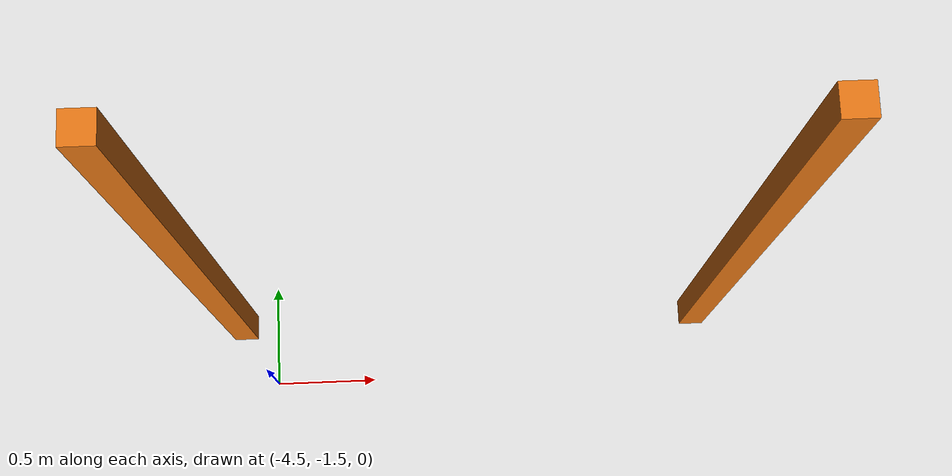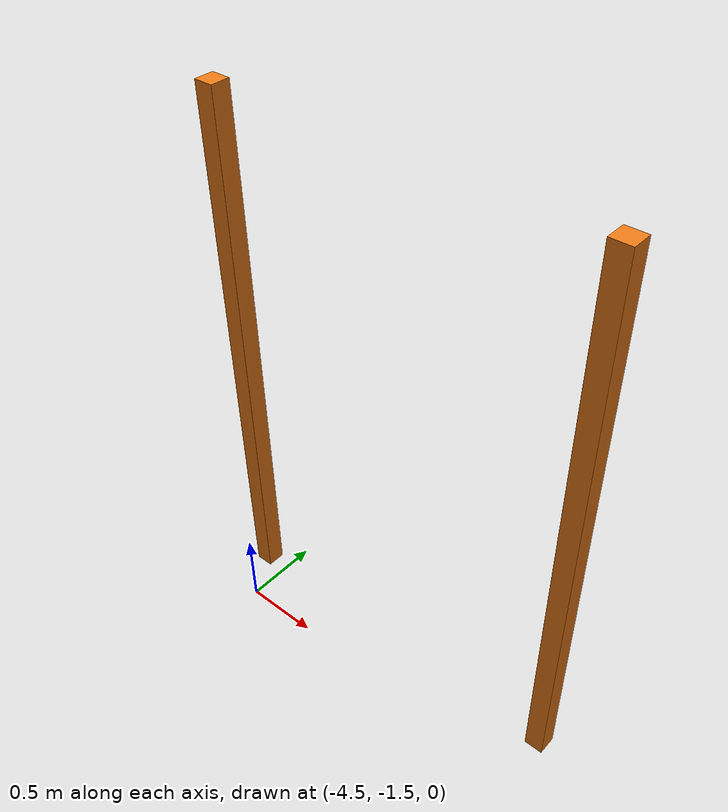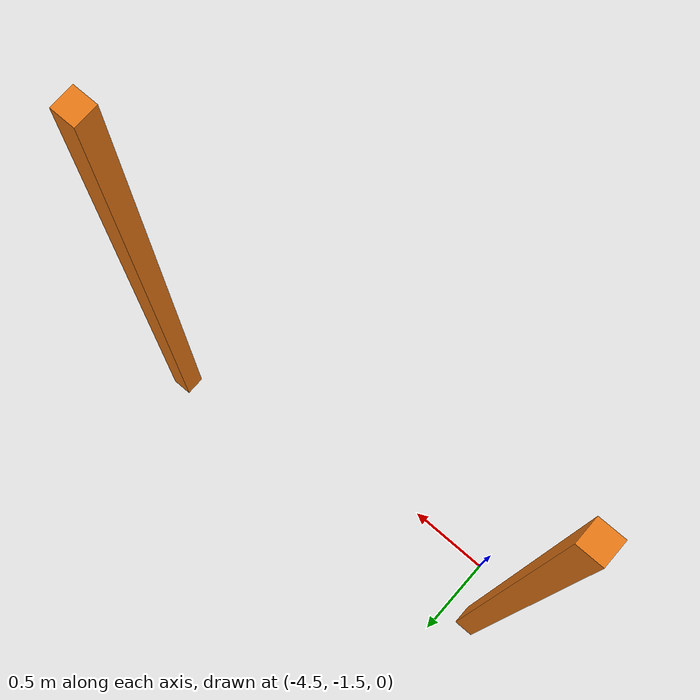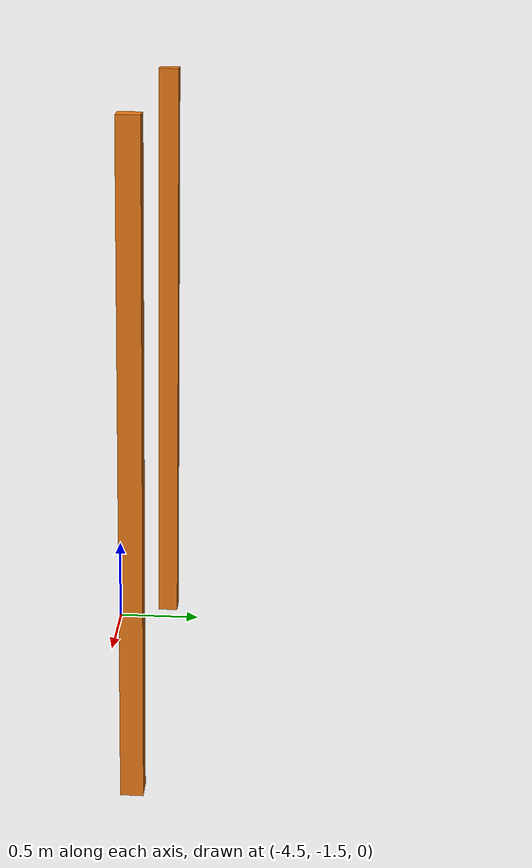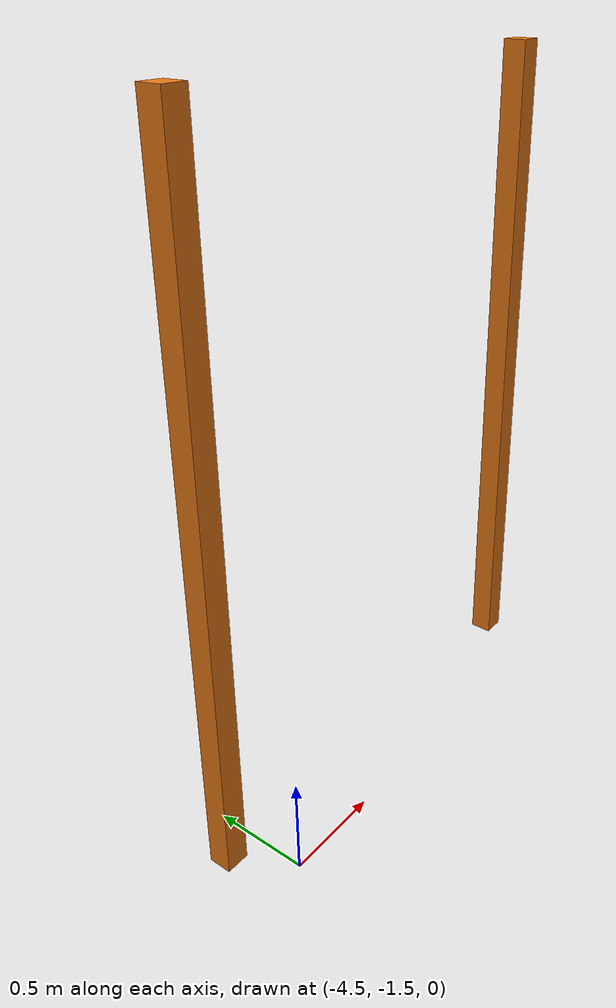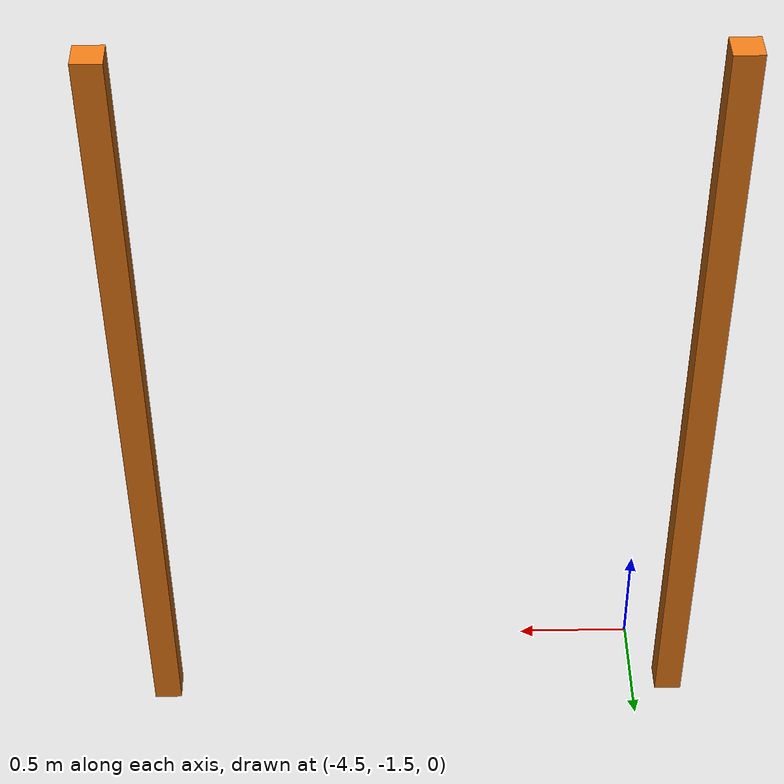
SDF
<sdf version="1.7">
 <world name="default">
  <model name="warehouse_racks">
   <static>1</static>
   <link name="r10_u4_1">
    <pose>-4.66667 -1.2 1.75 0 0 0</pose>
    <collision name="c"><geometry><box><size>0.12 0.12 3.5</size></box></geometry></collision>
    <visual name="v">
     <geometry><box><size>0.12 0.12 3.5</size></box></geometry>
     <material>
      <ambient>0.910 0.471 0.086 1</ambient>
      <diffuse>0.910 0.471 0.086 1</diffuse>
      <specular>0.1 0.1 0.1 1</specular>
     </material>
    </visual>
   </link>
   <link name="r10_u5_1">
    <pose>-2.33333 -1.2 1.75 0 0 0</pose>
    <collision name="c"><geometry><box><size>0.12 0.12 3.5</size></box></geometry></collision>
    <visual name="v">
     <geometry><box><size>0.12 0.12 3.5</size></box></geometry>
     <material>
      <ambient>0.910 0.471 0.086 1</ambient>
      <diffuse>0.910 0.471 0.086 1</diffuse>
      <specular>0.1 0.1 0.1 1</specular>
     </material>
    </visual>
   </link>
  </model>
 </world>
</sdf>
